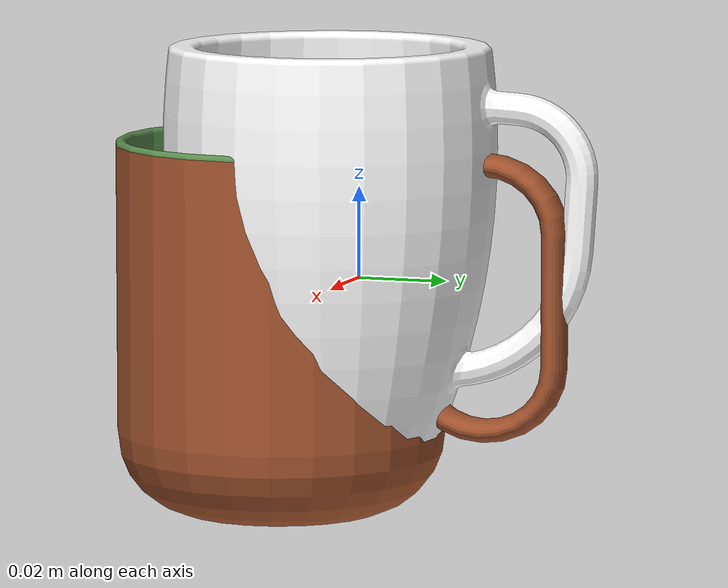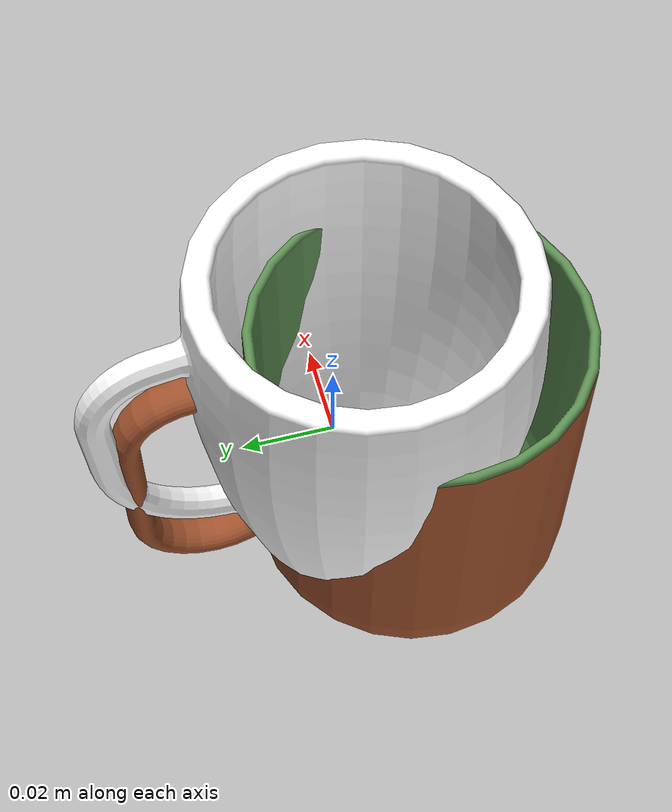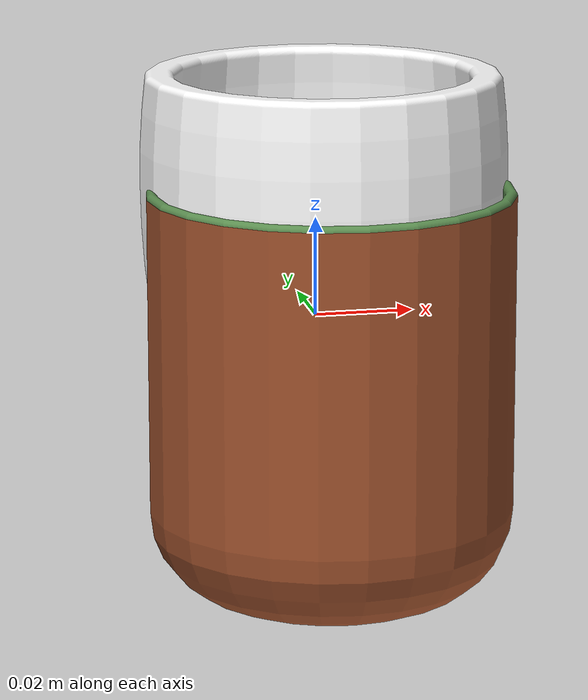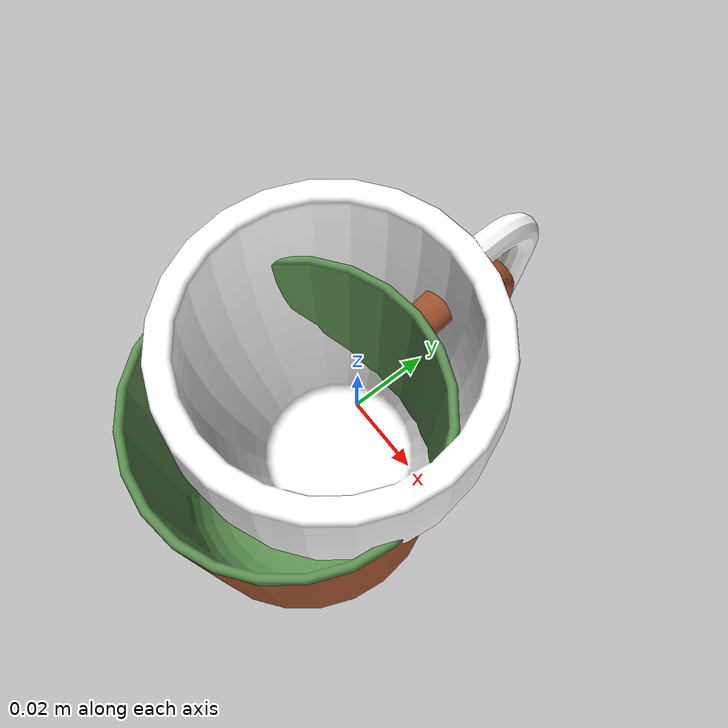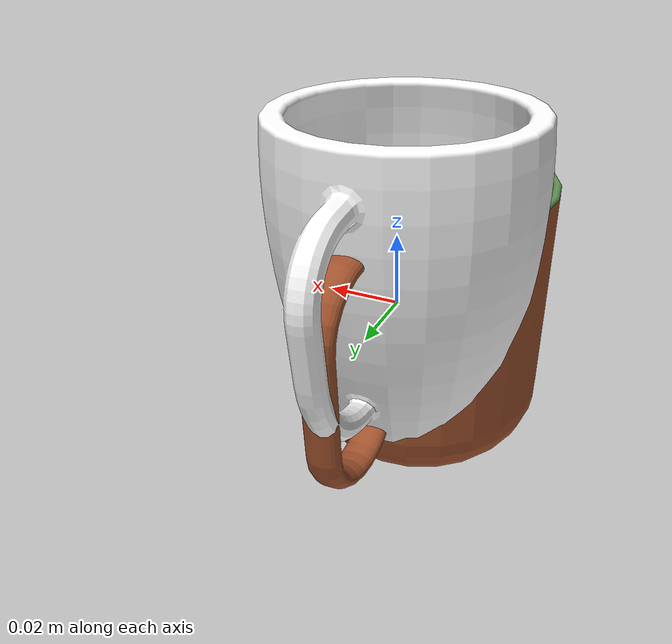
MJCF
<mujoco model="34ae0b61">
  <asset>
  <texture file="../../../textures/ceramic.png" name="tex-34ae0b61" type="2d" />
  <material name="34ae0b61" reflectance="0.5" texrepeat="1 1" texture="tex-34ae0b61" texuniform="false" />
  <mesh file="visual/model_normalized_0.obj" name="model_normalized_0_vis" scale="0.15 0.15 0.15" /><mesh file="visual/model_normalized_1.obj" name="model_normalized_1_vis" scale="0.15 0.15 0.15" /><mesh file="visual/model_normalized_2.obj" name="model_normalized_2_vis" scale="0.15 0.15 0.15" /><mesh file="collision/model_normalized_collision_13.obj" name="model_normalized_collision_13._coll" scale="0.15 0.15 0.15" /><mesh file="collision/model_normalized_collision_16.obj" name="model_normalized_collision_16._coll" scale="0.15 0.15 0.15" /><mesh file="collision/model_normalized_collision_30.obj" name="model_normalized_collision_30._coll" scale="0.15 0.15 0.15" /><mesh file="collision/model_normalized_collision_21.obj" name="model_normalized_collision_21._coll" scale="0.15 0.15 0.15" /><mesh file="collision/model_normalized_collision_1.obj" name="model_normalized_collision_1._coll" scale="0.15 0.15 0.15" /><mesh file="collision/model_normalized_collision_20.obj" name="model_normalized_collision_20._coll" scale="0.15 0.15 0.15" /><mesh file="collision/model_normalized_collision_27.obj" name="model_normalized_collision_27._coll" scale="0.15 0.15 0.15" /><mesh file="collision/model_normalized_collision_10.obj" name="model_normalized_collision_10._coll" scale="0.15 0.15 0.15" /><mesh file="collision/model_normalized_collision_24.obj" name="model_normalized_collision_24._coll" scale="0.15 0.15 0.15" /><mesh file="collision/model_normalized_collision_28.obj" name="model_normalized_collision_28._coll" scale="0.15 0.15 0.15" /><mesh file="collision/model_normalized_collision_25.obj" name="model_normalized_collision_25._coll" scale="0.15 0.15 0.15" /><mesh file="collision/model_normalized_collision_23.obj" name="model_normalized_collision_23._coll" scale="0.15 0.15 0.15" /><mesh file="collision/model_normalized_collision_6.obj" name="model_normalized_collision_6._coll" scale="0.15 0.15 0.15" /><mesh file="collision/model_normalized_collision_8.obj" name="model_normalized_collision_8._coll" scale="0.15 0.15 0.15" /><mesh file="collision/model_normalized_collision_2.obj" name="model_normalized_collision_2._coll" scale="0.15 0.15 0.15" /><mesh file="collision/model_normalized_collision_12.obj" name="model_normalized_collision_12._coll" scale="0.15 0.15 0.15" /><mesh file="collision/model_normalized_collision_4.obj" name="model_normalized_collision_4._coll" scale="0.15 0.15 0.15" /><mesh file="collision/model_normalized_collision_19.obj" name="model_normalized_collision_19._coll" scale="0.15 0.15 0.15" /><mesh file="collision/model_normalized_collision_5.obj" name="model_normalized_collision_5._coll" scale="0.15 0.15 0.15" /><mesh file="collision/model_normalized_collision_14.obj" name="model_normalized_collision_14._coll" scale="0.15 0.15 0.15" /><mesh file="collision/model_normalized_collision_11.obj" name="model_normalized_collision_11._coll" scale="0.15 0.15 0.15" /><mesh file="collision/model_normalized_collision_15.obj" name="model_normalized_collision_15._coll" scale="0.15 0.15 0.15" /><mesh file="collision/model_normalized_collision_18.obj" name="model_normalized_collision_18._coll" scale="0.15 0.15 0.15" /><mesh file="collision/model_normalized_collision_29.obj" name="model_normalized_collision_29._coll" scale="0.15 0.15 0.15" /><mesh file="collision/model_normalized_collision_26.obj" name="model_normalized_collision_26._coll" scale="0.15 0.15 0.15" /><mesh file="collision/model_normalized_collision_17.obj" name="model_normalized_collision_17._coll" scale="0.15 0.15 0.15" /><mesh file="collision/model_normalized_collision_31.obj" name="model_normalized_collision_31._coll" scale="0.15 0.15 0.15" /><mesh file="collision/model_normalized_collision_3.obj" name="model_normalized_collision_3._coll" scale="0.15 0.15 0.15" /><mesh file="collision/model_normalized_collision_9.obj" name="model_normalized_collision_9._coll" scale="0.15 0.15 0.15" /><mesh file="collision/model_normalized_collision_22.obj" name="model_normalized_collision_22._coll" scale="0.15 0.15 0.15" /><mesh file="collision/model_normalized_collision_7.obj" name="model_normalized_collision_7._coll" scale="0.15 0.15 0.15" /><mesh file="collision/model_normalized_collision_0.obj" name="model_normalized_collision_0._coll" scale="0.15 0.15 0.15" /><material name="material_0_0" specular="0.4000000000000001" shininess="0.01" rgba="0 0 0 1.0" /><material name="material_0_24" specular="0.4000000000000001" shininess="0.01" rgba="1 1 1 1.0" /><material name="material_1_24" specular="0.4000000000000001" shininess="0.01" rgba="0.360784 0.560784 0.317647 1.0" /><material name="material_2_24" specular="0.4000000000000001" shininess="0.01" rgba="0.627451 0.321569 0.176471 1.0" /></asset>
  <worldbody>
    <body>
      <body name="object">
      <geom solimp="0.998 0.998 0.001" solref="0.001 1" density="100" friction="0.95 0.3 0.1" type="mesh" mesh="model_normalized_0_vis" conaffinity="0" contype="0" group="1" material="material_2_24" /><geom solimp="0.998 0.998 0.001" solref="0.001 1" density="100" friction="0.95 0.3 0.1" type="mesh" mesh="model_normalized_1_vis" conaffinity="0" contype="0" group="1" material="material_1_24" /><geom solimp="0.998 0.998 0.001" solref="0.001 1" density="100" friction="0.95 0.3 0.1" type="mesh" mesh="model_normalized_2_vis" conaffinity="0" contype="0" group="1" material="material_0_24" /><geom solimp="0.998 0.998 0.001" solref="0.001 1" density="100" friction="0.95 0.3 0.1" type="mesh" mesh="model_normalized_collision_13._coll" group="0" rgba="0.8 0.8 0.8 0.0" /><geom solimp="0.998 0.998 0.001" solref="0.001 1" density="100" friction="0.95 0.3 0.1" type="mesh" mesh="model_normalized_collision_16._coll" group="0" rgba="0.8 0.8 0.8 0.0" /><geom solimp="0.998 0.998 0.001" solref="0.001 1" density="100" friction="0.95 0.3 0.1" type="mesh" mesh="model_normalized_collision_30._coll" group="0" rgba="0.8 0.8 0.8 0.0" /><geom solimp="0.998 0.998 0.001" solref="0.001 1" density="100" friction="0.95 0.3 0.1" type="mesh" mesh="model_normalized_collision_21._coll" group="0" rgba="0.8 0.8 0.8 0.0" /><geom solimp="0.998 0.998 0.001" solref="0.001 1" density="100" friction="0.95 0.3 0.1" type="mesh" mesh="model_normalized_collision_1._coll" group="0" rgba="0.8 0.8 0.8 0.0" /><geom solimp="0.998 0.998 0.001" solref="0.001 1" density="100" friction="0.95 0.3 0.1" type="mesh" mesh="model_normalized_collision_20._coll" group="0" rgba="0.8 0.8 0.8 0.0" /><geom solimp="0.998 0.998 0.001" solref="0.001 1" density="100" friction="0.95 0.3 0.1" type="mesh" mesh="model_normalized_collision_27._coll" group="0" rgba="0.8 0.8 0.8 0.0" /><geom solimp="0.998 0.998 0.001" solref="0.001 1" density="100" friction="0.95 0.3 0.1" type="mesh" mesh="model_normalized_collision_10._coll" group="0" rgba="0.8 0.8 0.8 0.0" /><geom solimp="0.998 0.998 0.001" solref="0.001 1" density="100" friction="0.95 0.3 0.1" type="mesh" mesh="model_normalized_collision_24._coll" group="0" rgba="0.8 0.8 0.8 0.0" /><geom solimp="0.998 0.998 0.001" solref="0.001 1" density="100" friction="0.95 0.3 0.1" type="mesh" mesh="model_normalized_collision_28._coll" group="0" rgba="0.8 0.8 0.8 0.0" /><geom solimp="0.998 0.998 0.001" solref="0.001 1" density="100" friction="0.95 0.3 0.1" type="mesh" mesh="model_normalized_collision_25._coll" group="0" rgba="0.8 0.8 0.8 0.0" /><geom solimp="0.998 0.998 0.001" solref="0.001 1" density="100" friction="0.95 0.3 0.1" type="mesh" mesh="model_normalized_collision_23._coll" group="0" rgba="0.8 0.8 0.8 0.0" /><geom solimp="0.998 0.998 0.001" solref="0.001 1" density="100" friction="0.95 0.3 0.1" type="mesh" mesh="model_normalized_collision_6._coll" group="0" rgba="0.8 0.8 0.8 0.0" /><geom solimp="0.998 0.998 0.001" solref="0.001 1" density="100" friction="0.95 0.3 0.1" type="mesh" mesh="model_normalized_collision_8._coll" group="0" rgba="0.8 0.8 0.8 0.0" /><geom solimp="0.998 0.998 0.001" solref="0.001 1" density="100" friction="0.95 0.3 0.1" type="mesh" mesh="model_normalized_collision_2._coll" group="0" rgba="0.8 0.8 0.8 0.0" /><geom solimp="0.998 0.998 0.001" solref="0.001 1" density="100" friction="0.95 0.3 0.1" type="mesh" mesh="model_normalized_collision_12._coll" group="0" rgba="0.8 0.8 0.8 0.0" /><geom solimp="0.998 0.998 0.001" solref="0.001 1" density="100" friction="0.95 0.3 0.1" type="mesh" mesh="model_normalized_collision_4._coll" group="0" rgba="0.8 0.8 0.8 0.0" /><geom solimp="0.998 0.998 0.001" solref="0.001 1" density="100" friction="0.95 0.3 0.1" type="mesh" mesh="model_normalized_collision_19._coll" group="0" rgba="0.8 0.8 0.8 0.0" /><geom solimp="0.998 0.998 0.001" solref="0.001 1" density="100" friction="0.95 0.3 0.1" type="mesh" mesh="model_normalized_collision_5._coll" group="0" rgba="0.8 0.8 0.8 0.0" /><geom solimp="0.998 0.998 0.001" solref="0.001 1" density="100" friction="0.95 0.3 0.1" type="mesh" mesh="model_normalized_collision_14._coll" group="0" rgba="0.8 0.8 0.8 0.0" /><geom solimp="0.998 0.998 0.001" solref="0.001 1" density="100" friction="0.95 0.3 0.1" type="mesh" mesh="model_normalized_collision_11._coll" group="0" rgba="0.8 0.8 0.8 0.0" /><geom solimp="0.998 0.998 0.001" solref="0.001 1" density="100" friction="0.95 0.3 0.1" type="mesh" mesh="model_normalized_collision_15._coll" group="0" rgba="0.8 0.8 0.8 0.0" /><geom solimp="0.998 0.998 0.001" solref="0.001 1" density="100" friction="0.95 0.3 0.1" type="mesh" mesh="model_normalized_collision_18._coll" group="0" rgba="0.8 0.8 0.8 0.0" /><geom solimp="0.998 0.998 0.001" solref="0.001 1" density="100" friction="0.95 0.3 0.1" type="mesh" mesh="model_normalized_collision_29._coll" group="0" rgba="0.8 0.8 0.8 0.0" /><geom solimp="0.998 0.998 0.001" solref="0.001 1" density="100" friction="0.95 0.3 0.1" type="mesh" mesh="model_normalized_collision_26._coll" group="0" rgba="0.8 0.8 0.8 0.0" /><geom solimp="0.998 0.998 0.001" solref="0.001 1" density="100" friction="0.95 0.3 0.1" type="mesh" mesh="model_normalized_collision_17._coll" group="0" rgba="0.8 0.8 0.8 0.0" /><geom solimp="0.998 0.998 0.001" solref="0.001 1" density="100" friction="0.95 0.3 0.1" type="mesh" mesh="model_normalized_collision_31._coll" group="0" rgba="0.8 0.8 0.8 0.0" /><geom solimp="0.998 0.998 0.001" solref="0.001 1" density="100" friction="0.95 0.3 0.1" type="mesh" mesh="model_normalized_collision_3._coll" group="0" rgba="0.8 0.8 0.8 0.0" /><geom solimp="0.998 0.998 0.001" solref="0.001 1" density="100" friction="0.95 0.3 0.1" type="mesh" mesh="model_normalized_collision_9._coll" group="0" rgba="0.8 0.8 0.8 0.0" /><geom solimp="0.998 0.998 0.001" solref="0.001 1" density="100" friction="0.95 0.3 0.1" type="mesh" mesh="model_normalized_collision_22._coll" group="0" rgba="0.8 0.8 0.8 0.0" /><geom solimp="0.998 0.998 0.001" solref="0.001 1" density="100" friction="0.95 0.3 0.1" type="mesh" mesh="model_normalized_collision_7._coll" group="0" rgba="0.8 0.8 0.8 0.0" /><geom solimp="0.998 0.998 0.001" solref="0.001 1" density="100" friction="0.95 0.3 0.1" type="mesh" mesh="model_normalized_collision_0._coll" group="0" rgba="0.8 0.8 0.8 0.0" /></body>
      <site rgba="0 0 0 0" size="0.005" pos="-0.0005308424249999998 -0.004126876050000003 -0.0529089018" name="bottom_site" />
      <site rgba="0 0 0 0" size="0.005" pos="-0.0005308424249999998 -0.004126876050000003 0.029897192850000004" name="top_site" />
      <site rgba="0 0 0 0" size="0.005" pos="0.0349923057 0.046269437999999996 -0.011505854474999999" name="horizontal_radius_site" />
    </body>
  </worldbody>
</mujoco>
